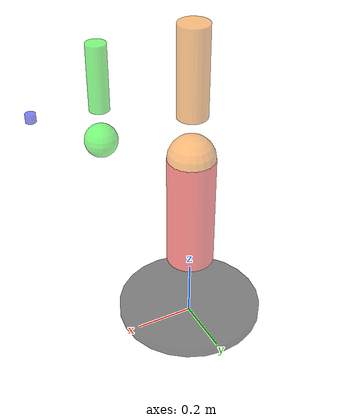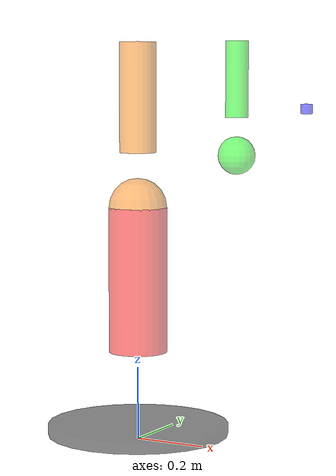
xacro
<?xml version='1.0'?>
<robot name="robot_ipsa" xmlns:xacro="http://www.ros.org/wiki/xacro">
    <xacro:include filename="$(find in426_desc)/xacro/material.xacro"/>
    <xacro:include filename="$(find in426_desc)/xacro/Robot_1/robot_1_ros2_control.xacro"/>
    <xacro:include filename="$(find in426_desc)/xacro/Robot_1/robot_1.gazebo"/>
    <!-- VARIABLES -->
    <xacro:property name="base_radius" value="0.25"/>
    <xacro:property name="base_length" value="0.03"/>
    <xacro:property name="link_1_length" value="0.4"/>
    <xacro:property name="link_1_radius" value="0.08"/>
    <xacro:property name="link_2_length" value="0.3"/>
    <xacro:property name="link_2_radius" value="0.05"/>
    <xacro:property name="link_3_length" value="0.2"/>
    <xacro:property name="link_3_radius" value="0.03"/>
    <xacro:property name="link_4_length" value="0.025"/>
    <xacro:property name="link_4_radius" value="0.015"/>

    <!-- MACROS -->
    <xacro:macro name="cylinder_inertial" params="mass radius length o_xyz o_rpy">
        <inertial>
            <origin xyz="${o_xyz}" rpy="${o_rpy}"/>
            <mass value="${mass}"/>
            <inertia ixx="${mass*(3*radius*radius+length*length)/12}" ixy="0.0" ixz="0.0"
                     iyy="${mass*(3*radius*radius+length*length)/12}" iyz="0.0" izz="${mass*radius*radius/2}"/>
        </inertial>
    </xacro:macro>
    <xacro:macro name="sphere_inertial" params="mass radius o_xyz o_rpy">
        <inertial>
            <origin xyz="${o_xyz}" rpy="${o_rpy}"/>
            <mass value="${mass}"/>
            <inertia ixx="${2*mass*radius*radius/5}" ixy="0.0" ixz="0.0"
                     iyy="${2*mass*radius*radius/5}" iyz="0.0" izz="${2*mass*radius*radius/5}"/>
        </inertial>
    </xacro:macro>
    <!-- *****Base link***** -->
    <link name="world"/>
    <joint name="world_to_base" type="fixed">
        <parent link="world"/>
        <child link="base_link"/>
        <origin xyz="0 0 ${base_length/2}"/>
    </joint>
    <link name="base_link">
        <visual>
            <origin xyz="0 0 ${base_length/2}" rpy="0 0 0"/>
            <geometry>
                <cylinder radius="${base_radius}" length="${base_length}"/>
            </geometry>
            <material name="base_material">
                <color rgba="0 0 0 0.5"/> <!-- Black with 50% transparency -->
            </material>
        </visual>
        <xacro:cylinder_inertial mass="1" radius="${base_radius}" length="${base_length}" o_xyz="0 0 ${base_length/2}" o_rpy="0 0 0"/>
        <collision>
            <origin xyz="0 0 ${base_length/2}" rpy="0 0 0"/>
            <geometry>
                <cylinder radius="${base_radius}" length="${base_length}"/>
            </geometry>
        </collision>
    </link>
    <!-- *****LINK 1***** -->
    <link name="link_1">
        <visual>
            <origin xyz="0 0 ${link_1_length/2}" rpy="0 0 0"/>
            <geometry>
                <cylinder radius="${link_1_radius}" length="${link_1_length}"/>
            </geometry>
            <material name="link_1_material">
                <color rgba="1 0 0 0.5"/> <!-- Red with 50% transparency -->
            </material>
        </visual>
        <xacro:cylinder_inertial mass="1" radius="${link_1_radius}" length="${link_1_length}" o_xyz="0 0 ${link_1_length/2}" o_rpy="0 0 0"/>
        <collision>
            <origin xyz="0 0 ${link_1_length/2}" rpy="0 0 0"/>
            <geometry>
                <cylinder radius="${link_1_radius}" length="${link_1_length}"/>
            </geometry>
        </collision>
    </link>
    <joint name="base_to_1" type="revolute">
        <origin xyz="0 0 ${base_length + link_1_length/2}" rpy="0 0 0"/>
        <parent link="base_link"/>
        <child link="link_1"/>
        <axis xyz="0 0 1"/>
        <dynamics damping="0.7"/>
        <limit effort="100" lower="${-pi/2}" upper="${pi/2}" velocity="1"/>
    </joint>
    <!-- *****LINK 2***** -->
    <link name="link_2p">
        <visual>
            <geometry>
                <sphere radius="${link_1_radius}"/>
            </geometry>
            <material name="link_2p_material">
                <color rgba="1 0.5 0 0.5"/> <!-- Orange with 50% transparency -->
            </material>
        </visual>
        <xacro:sphere_inertial mass="0.1" radius="${link_1_radius}" o_xyz="0 0 0" o_rpy="0 0 0"/>
        <collision>
            <origin xyz="0 0 0" rpy="0 0 0"/>
            <geometry>
                <sphere radius="${link_1_radius}"/>
            </geometry>
        </collision>
    </link>
    <joint name="1_to_2p" type="fixed">
        <origin xyz="0 0 ${link_1_length}" rpy="0 0 0"/>
        <parent link="link_1"/>
        <child link="link_2p"/>
    </joint>
    <link name="link_2">
        <visual>
            <origin xyz="0 0 ${link_2_length/2}" rpy="0 0 0"/>
            <geometry>
                <cylinder radius="${link_2_radius}" length="${link_2_length}"/>
            </geometry>
            <material name="link_2_material">
                <color rgba="1 0.5 0 0.5"/> <!-- Orange with 50% transparency -->
            </material>
        </visual>
        <xacro:cylinder_inertial mass="1" radius="${link_2_radius}" length="${link_2_length}" o_xyz="0 0 ${link_2_length/2}" o_rpy="0 0 0"/>
        <collision>
            <origin xyz="0 0 ${link_2_length/2}" rpy="0 0 0"/>
            <geometry>
                <cylinder radius="${link_2_radius}" length="${link_2_length}"/>
            </geometry>
        </collision>
    </link>
    <joint name="1_to_2" type="revolute">
        <origin xyz="0 0 ${link_1_length + link_2_length/2}" rpy="0 0 0"/>
        <parent link="link_1"/>
        <child link="link_2"/>
        <axis xyz="0 1 0"/>
        <dynamics damping="0.7"/>
        <limit effort="100" lower="${-0.52}" upper="${pi/2}" velocity="1"/>
    </joint>
    <!-- *****LINK 3***** -->
    <link name="link_3p">
        <visual>
            <geometry>
                <sphere radius="${link_2_radius}"/>
            </geometry>
            <material name="link_3p_material">
                <color rgba="0 1 0 0.5"/> <!-- Green with 50% transparency -->
            </material>
        </visual>
        <xacro:sphere_inertial mass="0.1" radius="${link_2_radius}" o_xyz="0 0 0" o_rpy="0 0 0"/>
        <collision>
            <origin xyz="0 0 0" rpy="0 0 0"/>
            <geometry>
                <sphere radius="${link_2_radius}"/>
            </geometry>
        </collision>
    </link>
    <joint name="1_to_3p" type="fixed">
        <origin xyz="${link_2_length} 0 0" rpy="0 0 0"/>
        <parent link="link_2"/>
        <child link="link_3p"/>
    </joint>
    <link name="link_3">
        <visual>
            <origin xyz="0 0 ${link_3_length/2}" rpy="0 0 0"/>
            <geometry>
                <cylinder radius="${link_3_radius}" length="${link_3_length}"/>
            </geometry>
            <material name="link_3_material">
                <color rgba="0 1 0 0.5"/> <!-- Green with 50% transparency -->
            </material>
        </visual>
        <xacro:cylinder_inertial mass="1" radius="${link_3_radius}" length="${link_3_length}" o_xyz="0 0 ${link_3_length/2}" o_rpy="0 0 0"/>
        <collision>
            <origin xyz="0 0 ${link_3_length/2}" rpy="0 0 0"/>
            <geometry>
                <cylinder radius="${link_3_radius}" length="${link_3_length}"/>
            </geometry>
        </collision>
    </link>
    <joint name="2_to_3" type="revolute">
        <origin xyz="${link_2_length} 0 ${link_3_length/2}" rpy="0 0 0"/>
        <parent link="link_2"/>
        <child link="link_3"/>
        <axis xyz="1 0 0"/>
        <dynamics damping="0.7"/>
        <limit effort="100" lower="${-pi/2}" upper="${0}" velocity="1"/>
    </joint>
    <!-- *****LINK 4***** -->
    <link name="link_4">
        <visual>
            <origin xyz="0 0 ${link_4_length/2}" rpy="0 0 0"/>
            <geometry>
                <cylinder radius="${link_4_radius}" length="${link_4_length}"/>
            </geometry>
            <material name="link_4_material">
                <color rgba="0 0 1 0.5"/> <!-- Blue with 50% transparency -->
            </material>
        </visual>
        <xacro:cylinder_inertial mass="1" radius="${link_4_radius}" length="${link_4_length}" o_xyz="0 0 ${link_4_length/2}" o_rpy="0 0 0"/>
        <collision>
            <origin xyz="0 0 ${link_4_length/2}" rpy="0 0 0"/>
            <geometry>
                <cylinder radius="${link_4_radius}" length="${link_4_length}"/>
            </geometry>
        </collision>
    </link>
    <joint name="3_to_4" type="fixed">
        <origin xyz="${link_3_length} 0 ${link_4_length/2}" rpy="0 0 0"/>
        <parent link="link_3"/>
        <child link="link_4"/>
    </joint>
</robot>
